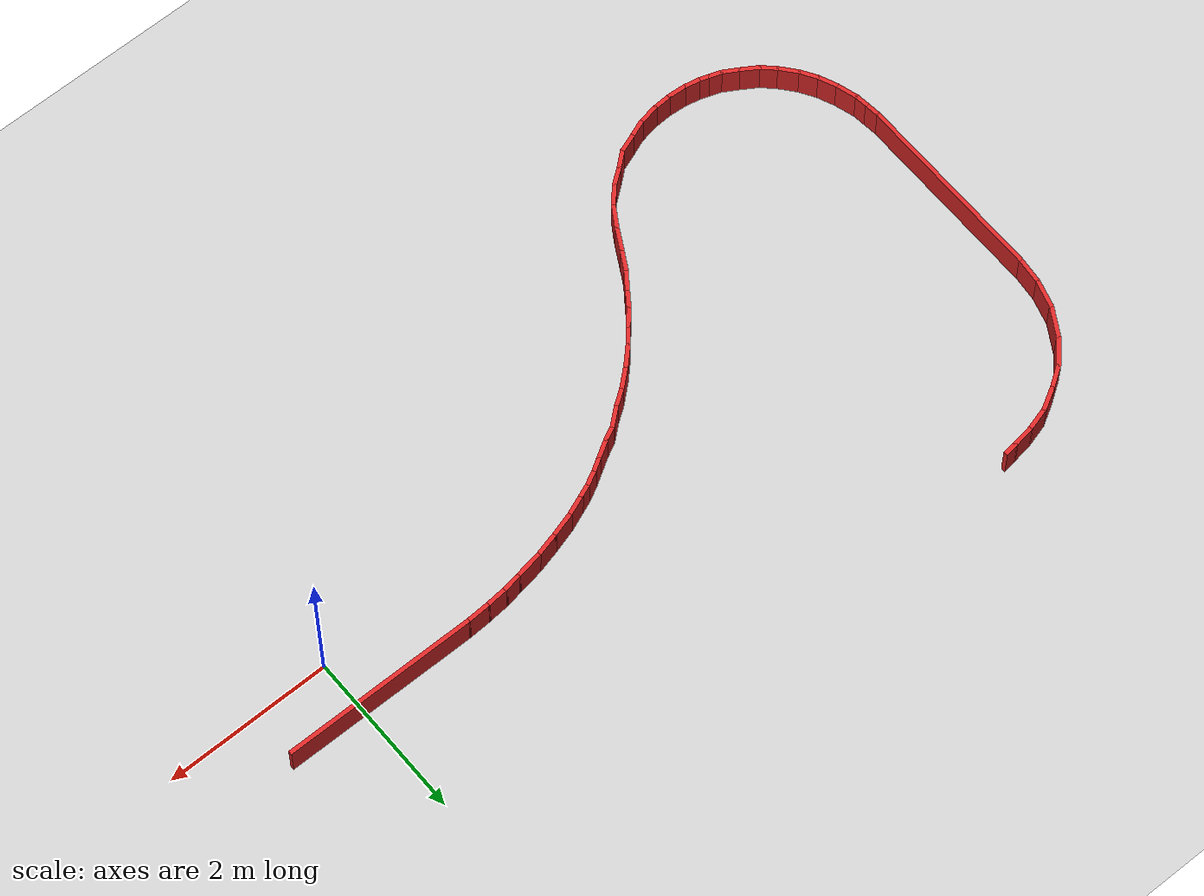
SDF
<sdf version="1.8">
 <world name="warehouse">
  <model name="ground_plane">
   <static>1</static>
   <link name="link">
    <collision name="collision">
     <geometry><plane><normal>0 0 1</normal><size>100 100</size></plane></geometry>
    </collision>
    <visual name="visual">
     <geometry><plane><normal>0 0 1</normal><size>100 100</size></plane></geometry>
     <material>
      <ambient>0.8 0.8 0.8 1</ambient>
      <diffuse>0.8 0.8 0.8 1</diffuse>
      <specular>0.8 0.8 0.8 1</specular>
     </material>
     <plugin name="__default__" filename="__default__"/>
    </visual>
   </link>
   <plugin name="__default__" filename="__default__"/>
  </model>
  <model name="outer_wall">
   <static>true</static>
   <link name="ow_91">
    <pose>-0.217081 0.683669 0.2000 0 0 3.138416</pose>
    <collision name="ow_91_collision"><geometry><box><size>2.341153 0.05 0.4</size></box></geometry></collision>
    <visual name="ow_91_visual">
     <geometry><box><size>2.341153 0.05 0.4</size></box></geometry>
     <material>
      <ambient>0.85 0.15 0.15 1</ambient>
      <diffuse>0.85 0.15 0.15 1</diffuse>
      <specular>0.1 0.1 0.1 1</specular>
     </material>
    </visual>
   </link>
   <link name="ow_92">
    <pose>-1.513798 0.680614 0.2000 0 0 -3.092119</pose>
    <collision name="ow_92_collision"><geometry><box><size>0.292626 0.05 0.4</size></box></geometry></collision>
    <visual name="ow_92_visual">
     <geometry><box><size>0.292626 0.05 0.4</size></box></geometry>
     <material>
      <ambient>0.85 0.15 0.15 1</ambient>
      <diffuse>0.85 0.15 0.15 1</diffuse>
      <specular>0.1 0.1 0.1 1</specular>
     </material>
    </visual>
   </link>
   <link name="ow_93">
    <pose>-1.775802 0.663267 0.2000 0 0 -3.057515</pose>
    <collision name="ow_93_collision"><geometry><box><size>0.272607 0.05 0.4</size></box></geometry></collision>
    <visual name="ow_93_visual">
     <geometry><box><size>0.272607 0.05 0.4</size></box></geometry>
     <material>
      <ambient>0.85 0.15 0.15 1</ambient>
      <diffuse>0.85 0.15 0.15 1</diffuse>
      <specular>0.1 0.1 0.1 1</specular>
     </material>
    </visual>
   </link>
   <link name="ow_94">
    <pose>-2.001793 0.635921 0.2000 0 0 -2.975964</pose>
    <collision name="ow_94_collision"><geometry><box><size>0.223047 0.05 0.4</size></box></geometry></collision>
    <visual name="ow_94_visual">
     <geometry><box><size>0.223047 0.05 0.4</size></box></geometry>
     <material>
      <ambient>0.85 0.15 0.15 1</ambient>
      <diffuse>0.85 0.15 0.15 1</diffuse>
      <specular>0.1 0.1 0.1 1</specular>
     </material>
    </visual>
   </link>
   <link name="ow_95">
    <pose>-2.261739 0.592113 0.2000 0 0 -2.973799</pose>
    <collision name="ow_95_collision"><geometry><box><size>0.344176 0.05 0.4</size></box></geometry></collision>
    <visual name="ow_95_visual">
     <geometry><box><size>0.344176 0.05 0.4</size></box></geometry>
     <material>
      <ambient>0.85 0.15 0.15 1</ambient>
      <diffuse>0.85 0.15 0.15 1</diffuse>
      <specular>0.1 0.1 0.1 1</specular>
     </material>
    </visual>
   </link>
   <link name="ow_96">
    <pose>-2.552122 0.531693 0.2000 0 0 -2.891520</pose>
    <collision name="ow_96_collision"><geometry><box><size>0.289527 0.05 0.4</size></box></geometry></collision>
    <visual name="ow_96_visual">
     <geometry><box><size>0.289527 0.05 0.4</size></box></geometry>
     <material>
      <ambient>0.85 0.15 0.15 1</ambient>
      <diffuse>0.85 0.15 0.15 1</diffuse>
      <specular>0.1 0.1 0.1 1</specular>
     </material>
    </visual>
   </link>
   <link name="ow_97">
    <pose>-2.821628 0.457721 0.2000 0 0 -2.857143</pose>
    <collision name="ow_97_collision"><geometry><box><size>0.309503 0.05 0.4</size></box></geometry></collision>
    <visual name="ow_97_visual">
     <geometry><box><size>0.309503 0.05 0.4</size></box></geometry>
     <material>
      <ambient>0.85 0.15 0.15 1</ambient>
      <diffuse>0.85 0.15 0.15 1</diffuse>
      <specular>0.1 0.1 0.1 1</specular>
     </material>
    </visual>
   </link>
   <link name="ow_98">
    <pose>-3.074871 0.371653 0.2000 0 0 -2.763181</pose>
    <collision name="ow_98_collision"><geometry><box><size>0.266021 0.05 0.4</size></box></geometry></collision>
    <visual name="ow_98_visual">
     <geometry><box><size>0.266021 0.05 0.4</size></box></geometry>
     <material>
      <ambient>0.85 0.15 0.15 1</ambient>
      <diffuse>0.85 0.15 0.15 1</diffuse>
      <specular>0.1 0.1 0.1 1</specular>
     </material>
    </visual>
   </link>
   <link name="ow_99">
    <pose>-3.261335 0.296280 0.2000 0 0 -2.748428</pose>
    <collision name="ow_99_collision"><geometry><box><size>0.176232 0.05 0.4</size></box></geometry></collision>
    <visual name="ow_99_visual">
     <geometry><box><size>0.176232 0.05 0.4</size></box></geometry>
     <material>
      <ambient>0.85 0.15 0.15 1</ambient>
      <diffuse>0.85 0.15 0.15 1</diffuse>
      <specular>0.1 0.1 0.1 1</specular>
     </material>
    </visual>
   </link>
   <link name="ow_100">
    <pose>-3.409862 0.225555 0.2000 0 0 -2.650954</pose>
    <collision name="ow_100_collision"><geometry><box><size>0.193172 0.05 0.4</size></box></geometry></collision>
    <visual name="ow_100_visual">
     <geometry><box><size>0.193172 0.05 0.4</size></box></geometry>
     <material>
      <ambient>0.85 0.15 0.15 1</ambient>
      <diffuse>0.85 0.15 0.15 1</diffuse>
      <specular>0.1 0.1 0.1 1</specular>
     </material>
    </visual>
   </link>
   <link name="ow_101">
    <pose>-3.551563 0.144229 0.2000 0 0 -2.586340</pose>
    <collision name="ow_101_collision"><geometry><box><size>0.173759 0.05 0.4</size></box></geometry></collision>
    <visual name="ow_101_visual">
     <geometry><box><size>0.173759 0.05 0.4</size></box></geometry>
     <material>
      <ambient>0.85 0.15 0.15 1</ambient>
      <diffuse>0.85 0.15 0.15 1</diffuse>
      <specular>0.1 0.1 0.1 1</specular>
     </material>
    </visual>
   </link>
   <link name="ow_102">
    <pose>-3.712788 0.045712 0.2000 0 0 -2.597712</pose>
    <collision name="ow_102_collision"><geometry><box><size>0.244132 0.05 0.4</size></box></geometry></collision>
    <visual name="ow_102_visual">
     <geometry><box><size>0.244132 0.05 0.4</size></box></geometry>
     <material>
      <ambient>0.85 0.15 0.15 1</ambient>
      <diffuse>0.85 0.15 0.15 1</diffuse>
      <specular>0.1 0.1 0.1 1</specular>
     </material>
    </visual>
   </link>
   <link name="ow_103">
    <pose>-3.884960 -0.051874 0.2000 0 0 -2.662769</pose>
    <collision name="ow_103_collision"><geometry><box><size>0.191883 0.05 0.4</size></box></geometry></collision>
    <visual name="ow_103_visual">
     <geometry><box><size>0.191883 0.05 0.4</size></box></geometry>
     <material>
      <ambient>0.85 0.15 0.15 1</ambient>
      <diffuse>0.85 0.15 0.15 1</diffuse>
      <specular>0.1 0.1 0.1 1</specular>
     </material>
    </visual>
   </link>
   <link name="ow_104">
    <pose>-4.053073 -0.169179 0.2000 0 0 -2.439331</pose>
    <collision name="ow_104_collision"><geometry><box><size>0.260604 0.05 0.4</size></box></geometry></collision>
    <visual name="ow_104_visual">
     <geometry><box><size>0.260604 0.05 0.4</size></box></geometry>
     <material>
      <ambient>0.85 0.15 0.15 1</ambient>
      <diffuse>0.85 0.15 0.15 1</diffuse>
      <specular>0.1 0.1 0.1 1</specular>
     </material>
    </visual>
   </link>
   <link name="ow_105">
    <pose>-4.231076 -0.307197 0.2000 0 0 -2.530928</pose>
    <collision name="ow_105_collision"><geometry><box><size>0.230352 0.05 0.4</size></box></geometry></collision>
    <visual name="ow_105_visual">
     <geometry><box><size>0.230352 0.05 0.4</size></box></geometry>
     <material>
      <ambient>0.85 0.15 0.15 1</ambient>
      <diffuse>0.85 0.15 0.15 1</diffuse>
      <specular>0.1 0.1 0.1 1</specular>
     </material>
    </visual>
   </link>
   <link name="ow_106">
    <pose>-4.421945 -0.458782 0.2000 0 0 -2.424591</pose>
    <collision name="ow_106_collision"><geometry><box><size>0.297805 0.05 0.4</size></box></geometry></collision>
    <visual name="ow_106_visual">
     <geometry><box><size>0.297805 0.05 0.4</size></box></geometry>
     <material>
      <ambient>0.85 0.15 0.15 1</ambient>
      <diffuse>0.85 0.15 0.15 1</diffuse>
      <specular>0.1 0.1 0.1 1</specular>
     </material>
    </visual>
   </link>
   <link name="ow_107">
    <pose>-4.619718 -0.642966 0.2000 0 0 -2.357076</pose>
    <collision name="ow_107_collision"><geometry><box><size>0.283012 0.05 0.4</size></box></geometry></collision>
    <visual name="ow_107_visual">
     <geometry><box><size>0.283012 0.05 0.4</size></box></geometry>
     <material>
      <ambient>0.85 0.15 0.15 1</ambient>
      <diffuse>0.85 0.15 0.15 1</diffuse>
      <specular>0.1 0.1 0.1 1</specular>
     </material>
    </visual>
   </link>
   <link name="ow_108">
    <pose>-4.781413 -0.817411 0.2000 0 0 -2.270406</pose>
    <collision name="ow_108_collision"><geometry><box><size>0.233144 0.05 0.4</size></box></geometry></collision>
    <visual name="ow_108_visual">
     <geometry><box><size>0.233144 0.05 0.4</size></box></geometry>
     <material>
      <ambient>0.85 0.15 0.15 1</ambient>
      <diffuse>0.85 0.15 0.15 1</diffuse>
      <specular>0.1 0.1 0.1 1</specular>
     </material>
    </visual>
   </link>
   <link name="ow_109">
    <pose>-4.924470 -0.982406 0.2000 0 0 -2.299102</pose>
    <collision name="ow_109_collision"><geometry><box><size>0.243656 0.05 0.4</size></box></geometry></collision>
    <visual name="ow_109_visual">
     <geometry><box><size>0.243656 0.05 0.4</size></box></geometry>
     <material>
      <ambient>0.85 0.15 0.15 1</ambient>
      <diffuse>0.85 0.15 0.15 1</diffuse>
      <specular>0.1 0.1 0.1 1</specular>
     </material>
    </visual>
   </link>
   <link name="ow_110">
    <pose>-5.062353 -1.156340 0.2000 0 0 -2.182388</pose>
    <collision name="ow_110_collision"><geometry><box><size>0.241015 0.05 0.4</size></box></geometry></collision>
    <visual name="ow_110_visual">
     <geometry><box><size>0.241015 0.05 0.4</size></box></geometry>
     <material>
      <ambient>0.85 0.15 0.15 1</ambient>
      <diffuse>0.85 0.15 0.15 1</diffuse>
      <specular>0.1 0.1 0.1 1</specular>
     </material>
    </visual>
   </link>
   <link name="ow_111">
    <pose>-5.198272 -1.345685 0.2000 0 0 -2.203312</pose>
    <collision name="ow_111_collision"><geometry><box><size>0.265167 0.05 0.4</size></box></geometry></collision>
    <visual name="ow_111_visual">
     <geometry><box><size>0.265167 0.05 0.4</size></box></geometry>
     <material>
      <ambient>0.85 0.15 0.15 1</ambient>
      <diffuse>0.85 0.15 0.15 1</diffuse>
      <specular>0.1 0.1 0.1 1</specular>
     </material>
    </visual>
   </link>
   <link name="ow_112">
    <pose>-5.330042 -1.550418 0.2000 0 0 -2.081415</pose>
    <collision name="ow_112_collision"><geometry><box><size>0.262686 0.05 0.4</size></box></geometry></collision>
    <visual name="ow_112_visual">
     <geometry><box><size>0.262686 0.05 0.4</size></box></geometry>
     <material>
      <ambient>0.85 0.15 0.15 1</ambient>
      <diffuse>0.85 0.15 0.15 1</diffuse>
      <specular>0.1 0.1 0.1 1</specular>
     </material>
    </visual>
   </link>
   <link name="ow_113">
    <pose>-5.457485 -1.781213 0.2000 0 0 -2.070118</pose>
    <collision name="ow_113_collision"><geometry><box><size>0.304610 0.05 0.4</size></box></geometry></collision>
    <visual name="ow_113_visual">
     <geometry><box><size>0.304610 0.05 0.4</size></box></geometry>
     <material>
      <ambient>0.85 0.15 0.15 1</ambient>
      <diffuse>0.85 0.15 0.15 1</diffuse>
      <specular>0.1 0.1 0.1 1</specular>
     </material>
    </visual>
   </link>
   <link name="ow_114">
    <pose>-5.602047 -2.028682 0.2000 0 0 -2.128432</pose>
    <collision name="ow_114_collision"><geometry><box><size>0.308831 0.05 0.4</size></box></geometry></collision>
    <visual name="ow_114_visual">
     <geometry><box><size>0.308831 0.05 0.4</size></box></geometry>
     <material>
      <ambient>0.85 0.15 0.15 1</ambient>
      <diffuse>0.85 0.15 0.15 1</diffuse>
      <specular>0.1 0.1 0.1 1</specular>
     </material>
    </visual>
   </link>
   <link name="ow_115">
    <pose>-5.758771 -2.237800 0.2000 0 0 -2.318594</pose>
    <collision name="ow_115_collision"><geometry><box><size>0.256175 0.05 0.4</size></box></geometry></collision>
    <visual name="ow_115_visual">
     <geometry><box><size>0.256175 0.05 0.4</size></box></geometry>
     <material>
      <ambient>0.85 0.15 0.15 1</ambient>
      <diffuse>0.85 0.15 0.15 1</diffuse>
      <specular>0.1 0.1 0.1 1</specular>
     </material>
    </visual>
   </link>
   <link name="ow_116">
    <pose>-5.928142 -2.393348 0.2000 0 0 -2.482703</pose>
    <collision name="ow_116_collision"><geometry><box><size>0.245298 0.05 0.4</size></box></geometry></collision>
    <visual name="ow_116_visual">
     <geometry><box><size>0.245298 0.05 0.4</size></box></geometry>
     <material>
      <ambient>0.85 0.15 0.15 1</ambient>
      <diffuse>0.85 0.15 0.15 1</diffuse>
      <specular>0.1 0.1 0.1 1</specular>
     </material>
    </visual>
   </link>
   <link name="ow_117">
    <pose>-6.097570 -2.530268 0.2000 0 0 -2.439664</pose>
    <collision name="ow_117_collision"><geometry><box><size>0.230476 0.05 0.4</size></box></geometry></collision>
    <visual name="ow_117_visual">
     <geometry><box><size>0.230476 0.05 0.4</size></box></geometry>
     <material>
      <ambient>0.85 0.15 0.15 1</ambient>
      <diffuse>0.85 0.15 0.15 1</diffuse>
      <specular>0.1 0.1 0.1 1</specular>
     </material>
    </visual>
   </link>
   <link name="ow_118">
    <pose>-6.279866 -2.636087 0.2000 0 0 -2.785900</pose>
    <collision name="ow_118_collision"><geometry><box><size>0.237486 0.05 0.4</size></box></geometry></collision>
    <visual name="ow_118_visual">
     <geometry><box><size>0.237486 0.05 0.4</size></box></geometry>
     <material>
      <ambient>0.85 0.15 0.15 1</ambient>
      <diffuse>0.85 0.15 0.15 1</diffuse>
      <specular>0.1 0.1 0.1 1</specular>
     </material>
    </visual>
   </link>
   <link name="ow_119">
    <pose>-6.474709 -2.710402 0.2000 0 0 -2.767760</pose>
    <collision name="ow_119_collision"><geometry><box><size>0.219599 0.05 0.4</size></box></geometry></collision>
    <visual name="ow_119_visual">
     <geometry><box><size>0.219599 0.05 0.4</size></box></geometry>
     <material>
      <ambient>0.85 0.15 0.15 1</ambient>
      <diffuse>0.85 0.15 0.15 1</diffuse>
      <specular>0.1 0.1 0.1 1</specular>
     </material>
    </visual>
   </link>
   <link name="ow_120">
    <pose>-6.685999 -2.768015 0.2000 0 0 -2.964656</pose>
    <collision name="ow_120_collision"><geometry><box><size>0.260521 0.05 0.4</size></box></geometry></collision>
    <visual name="ow_120_visual">
     <geometry><box><size>0.260521 0.05 0.4</size></box></geometry>
     <material>
      <ambient>0.85 0.15 0.15 1</ambient>
      <diffuse>0.85 0.15 0.15 1</diffuse>
      <specular>0.1 0.1 0.1 1</specular>
     </material>
    </visual>
   </link>
   <link name="ow_121">
    <pose>-6.903637 -2.794340 0.2000 0 0 -3.089675</pose>
    <collision name="ow_121_collision"><geometry><box><size>0.218776 0.05 0.4</size></box></geometry></collision>
    <visual name="ow_121_visual">
     <geometry><box><size>0.218776 0.05 0.4</size></box></geometry>
     <material>
      <ambient>0.85 0.15 0.15 1</ambient>
      <diffuse>0.85 0.15 0.15 1</diffuse>
      <specular>0.1 0.1 0.1 1</specular>
     </material>
    </visual>
   </link>
   <link name="ow_122">
    <pose>-7.109204 -2.792639 0.2000 0 0 3.077166</pose>
    <collision name="ow_122_collision"><geometry><box><size>0.233068 0.05 0.4</size></box></geometry></collision>
    <visual name="ow_122_visual">
     <geometry><box><size>0.233068 0.05 0.4</size></box></geometry>
     <material>
      <ambient>0.85 0.15 0.15 1</ambient>
      <diffuse>0.85 0.15 0.15 1</diffuse>
      <specular>0.1 0.1 0.1 1</specular>
     </material>
    </visual>
   </link>
   <link name="ow_123">
    <pose>-7.303393 -2.767807 0.2000 0 0 2.939850</pose>
    <collision name="ow_123_collision"><geometry><box><size>0.199389 0.05 0.4</size></box></geometry></collision>
    <visual name="ow_123_visual">
     <geometry><box><size>0.199389 0.05 0.4</size></box></geometry>
     <material>
      <ambient>0.85 0.15 0.15 1</ambient>
      <diffuse>0.85 0.15 0.15 1</diffuse>
      <specular>0.1 0.1 0.1 1</specular>
     </material>
    </visual>
   </link>
   <link name="ow_124">
    <pose>-7.444453 -2.733140 0.2000 0 0 2.837442</pose>
    <collision name="ow_124_collision"><geometry><box><size>0.131486 0.05 0.4</size></box></geometry></collision>
    <visual name="ow_124_visual">
     <geometry><box><size>0.131486 0.05 0.4</size></box></geometry>
     <material>
      <ambient>0.85 0.15 0.15 1</ambient>
      <diffuse>0.85 0.15 0.15 1</diffuse>
      <specular>0.1 0.1 0.1 1</specular>
     </material>
    </visual>
   </link>
   <link name="ow_125">
    <pose>-7.569736 -2.691706 0.2000 0 0 2.811038</pose>
    <collision name="ow_125_collision"><geometry><box><size>0.172450 0.05 0.4</size></box></geometry></collision>
    <visual name="ow_125_visual">
     <geometry><box><size>0.172450 0.05 0.4</size></box></geometry>
     <material>
      <ambient>0.85 0.15 0.15 1</ambient>
      <diffuse>0.85 0.15 0.15 1</diffuse>
      <specular>0.1 0.1 0.1 1</specular>
     </material>
    </visual>
   </link>
   <link name="ow_126">
    <pose>-7.728932 -2.616599 0.2000 0 0 2.617301</pose>
    <collision name="ow_126_collision"><geometry><box><size>0.221224 0.05 0.4</size></box></geometry></collision>
    <visual name="ow_126_visual">
     <geometry><box><size>0.221224 0.05 0.4</size></box></geometry>
     <material>
      <ambient>0.85 0.15 0.15 1</ambient>
      <diffuse>0.85 0.15 0.15 1</diffuse>
      <specular>0.1 0.1 0.1 1</specular>
     </material>
    </visual>
   </link>
   <link name="ow_127">
    <pose>-7.910194 -2.506368 0.2000 0 0 2.575302</pose>
    <collision name="ow_127_collision"><geometry><box><size>0.243168 0.05 0.4</size></box></geometry></collision>
    <visual name="ow_127_visual">
     <geometry><box><size>0.243168 0.05 0.4</size></box></geometry>
     <material>
      <ambient>0.85 0.15 0.15 1</ambient>
      <diffuse>0.85 0.15 0.15 1</diffuse>
      <specular>0.1 0.1 0.1 1</specular>
     </material>
    </visual>
   </link>
   <link name="ow_128">
    <pose>-8.076504 -2.378846 0.2000 0 0 2.388282</pose>
    <collision name="ow_128_collision"><geometry><box><size>0.217809 0.05 0.4</size></box></geometry></collision>
    <visual name="ow_128_visual">
     <geometry><box><size>0.217809 0.05 0.4</size></box></geometry>
     <material>
      <ambient>0.85 0.15 0.15 1</ambient>
      <diffuse>0.85 0.15 0.15 1</diffuse>
      <specular>0.1 0.1 0.1 1</specular>
     </material>
    </visual>
   </link>
   <link name="ow_129">
    <pose>-8.225832 -2.219172 0.2000 0 0 2.268758</pose>
    <collision name="ow_129_collision"><geometry><box><size>0.260206 0.05 0.4</size></box></geometry></collision>
    <visual name="ow_129_visual">
     <geometry><box><size>0.260206 0.05 0.4</size></box></geometry>
     <material>
      <ambient>0.85 0.15 0.15 1</ambient>
      <diffuse>0.85 0.15 0.15 1</diffuse>
      <specular>0.1 0.1 0.1 1</specular>
     </material>
    </visual>
   </link>
   <link name="ow_130">
    <pose>-8.360320 -2.033697 0.2000 0 0 2.120819</pose>
    <collision name="ow_130_collision"><geometry><box><size>0.239252 0.05 0.4</size></box></geometry></collision>
    <visual name="ow_130_visual">
     <geometry><box><size>0.239252 0.05 0.4</size></box></geometry>
     <material>
      <ambient>0.85 0.15 0.15 1</ambient>
      <diffuse>0.85 0.15 0.15 1</diffuse>
      <specular>0.1 0.1 0.1 1</specular>
     </material>
    </visual>
   </link>
   <link name="ow_131">
    <pose>-8.462478 -1.837388 0.2000 0 0 1.982053</pose>
    <collision name="ow_131_collision"><geometry><box><size>0.244416 0.05 0.4</size></box></geometry></collision>
    <visual name="ow_131_visual">
     <geometry><box><size>0.244416 0.05 0.4</size></box></geometry>
     <material>
      <ambient>0.85 0.15 0.15 1</ambient>
      <diffuse>0.85 0.15 0.15 1</diffuse>
      <specular>0.1 0.1 0.1 1</specular>
     </material>
    </visual>
   </link>
   <link name="ow_132">
    <pose>-8.544199 -1.612760 0.2000 0 0 1.864750</pose>
    <collision name="ow_132_collision"><geometry><box><size>0.274468 0.05 0.4</size></box></geometry></collision>
    <visual name="ow_132_visual">
     <geometry><box><size>0.274468 0.05 0.4</size></box></geometry>
     <material>
      <ambient>0.85 0.15 0.15 1</ambient>
      <diffuse>0.85 0.15 0.15 1</diffuse>
      <specular>0.1 0.1 0.1 1</specular>
     </material>
    </visual>
   </link>
   <link name="ow_133">
    <pose>-8.590064 -1.415822 0.2000 0 0 1.689968</pose>
    <collision name="ow_133_collision"><geometry><box><size>0.171397 0.05 0.4</size></box></geometry></collision>
    <visual name="ow_133_visual">
     <geometry><box><size>0.171397 0.05 0.4</size></box></geometry>
     <material>
      <ambient>0.85 0.15 0.15 1</ambient>
      <diffuse>0.85 0.15 0.15 1</diffuse>
      <specular>0.1 0.1 0.1 1</specular>
     </material>
    </visual>
   </link>
   <link name="ow_134">
    <pose>-8.608014 -1.255306 0.2000 0 0 1.675278</pose>
    <collision name="ow_134_collision"><geometry><box><size>0.191645 0.05 0.4</size></box></geometry></collision>
    <visual name="ow_134_visual">
     <geometry><box><size>0.191645 0.05 0.4</size></box></geometry>
     <material>
      <ambient>0.85 0.15 0.15 1</ambient>
      <diffuse>0.85 0.15 0.15 1</diffuse>
      <specular>0.1 0.1 0.1 1</specular>
     </material>
    </visual>
   </link>
   <link name="ow_135">
    <pose>-8.615903 -0.003268 0.2000 0 0 1.569886</pose>
    <collision name="ow_135_collision"><geometry><box><size>2.353368 0.05 0.4</size></box></geometry></collision>
    <visual name="ow_135_visual">
     <geometry><box><size>2.353368 0.05 0.4</size></box></geometry>
     <material>
      <ambient>0.85 0.15 0.15 1</ambient>
      <diffuse>0.85 0.15 0.15 1</diffuse>
      <specular>0.1 0.1 0.1 1</specular>
     </material>
    </visual>
   </link>
   <link name="ow_136">
    <pose>-8.598887 1.319486 0.2000 0 0 1.468930</pose>
    <collision name="ow_136_collision"><geometry><box><size>0.333767 0.05 0.4</size></box></geometry></collision>
    <visual name="ow_136_visual">
     <geometry><box><size>0.333767 0.05 0.4</size></box></geometry>
     <material>
      <ambient>0.85 0.15 0.15 1</ambient>
      <diffuse>0.85 0.15 0.15 1</diffuse>
      <specular>0.1 0.1 0.1 1</specular>
     </material>
    </visual>
   </link>
   <link name="ow_137">
    <pose>-8.538097 1.634921 0.2000 0 0 1.296537</pose>
    <collision name="ow_137_collision"><geometry><box><size>0.351104 0.05 0.4</size></box></geometry></collision>
    <visual name="ow_137_visual">
     <geometry><box><size>0.351104 0.05 0.4</size></box></geometry>
     <material>
      <ambient>0.85 0.15 0.15 1</ambient>
      <diffuse>0.85 0.15 0.15 1</diffuse>
      <specular>0.1 0.1 0.1 1</specular>
     </material>
    </visual>
   </link>
   <link name="ow_138">
    <pose>-8.398316 1.958667 0.2000 0 0 1.047025</pose>
    <collision name="ow_138_collision"><geometry><box><size>0.399662 0.05 0.4</size></box></geometry></collision>
    <visual name="ow_138_visual">
     <geometry><box><size>0.399662 0.05 0.4</size></box></geometry>
     <material>
      <ambient>0.85 0.15 0.15 1</ambient>
      <diffuse>0.85 0.15 0.15 1</diffuse>
      <specular>0.1 0.1 0.1 1</specular>
     </material>
    </visual>
   </link>
   <link name="ow_139">
    <pose>-8.189175 2.249244 0.2000 0 0 0.835267</pose>
    <collision name="ow_139_collision"><geometry><box><size>0.360388 0.05 0.4</size></box></geometry></collision>
    <visual name="ow_139_visual">
     <geometry><box><size>0.360388 0.05 0.4</size></box></geometry>
     <material>
      <ambient>0.85 0.15 0.15 1</ambient>
      <diffuse>0.85 0.15 0.15 1</diffuse>
      <specular>0.1 0.1 0.1 1</specular>
     </material>
    </visual>
   </link>
   <link name="ow_140">
    <pose>-7.962501 2.451695 0.2000 0 0 0.595790</pose>
    <collision name="ow_140_collision"><geometry><box><size>0.291781 0.05 0.4</size></box></geometry></collision>
    <visual name="ow_140_visual">
     <geometry><box><size>0.291781 0.05 0.4</size></box></geometry>
     <material>
      <ambient>0.85 0.15 0.15 1</ambient>
      <diffuse>0.85 0.15 0.15 1</diffuse>
      <specular>0.1 0.1 0.1 1</specular>
     </material>
    </visual>
   </link>
   <link name="ow_141">
    <pose>-7.729943 2.596915 0.2000 0 0 0.521314</pose>
    <collision name="ow_141_collision"><geometry><box><size>0.296950 0.05 0.4</size></box></geometry></collision>
    <visual name="ow_141_visual">
     <geometry><box><size>0.296950 0.05 0.4</size></box></geometry>
     <material>
      <ambient>0.85 0.15 0.15 1</ambient>
      <diffuse>0.85 0.15 0.15 1</diffuse>
      <specular>0.1 0.1 0.1 1</specular>
     </material>
    </visual>
   </link>
   <link name="ow_142">
    <pose>-7.477002 2.703742 0.2000 0 0 0.277628</pose>
    <collision name="ow_142_collision"><geometry><box><size>0.296300 0.05 0.4</size></box></geometry></collision>
    <visual name="ow_142_visual">
     <geometry><box><size>0.296300 0.05 0.4</size></box></geometry>
     <material>
      <ambient>0.85 0.15 0.15 1</ambient>
      <diffuse>0.85 0.15 0.15 1</diffuse>
      <specular>0.1 0.1 0.1 1</specular>
     </material>
    </visual>
   </link>
   <link name="ow_143">
    <pose>-7.223749 2.759476 0.2000 0 0 0.147358</pose>
    <collision name="ow_143_collision"><geometry><box><size>0.263426 0.05 0.4</size></box></geometry></collision>
    <visual name="ow_143_visual">
     <geometry><box><size>0.263426 0.05 0.4</size></box></geometry>
     <material>
      <ambient>0.85 0.15 0.15 1</ambient>
      <diffuse>0.85 0.15 0.15 1</diffuse>
      <specular>0.1 0.1 0.1 1</specular>
     </material>
    </visual>
   </link>
   <link name="ow_144">
    <pose>-7.030036 2.786717 0.2000 0 0 0.127109</pose>
    <collision name="ow_144_collision"><geometry><box><size>0.167830 0.05 0.4</size></box></geometry></collision>
    <visual name="ow_144_visual">
     <geometry><box><size>0.167830 0.05 0.4</size></box></geometry>
     <material>
      <ambient>0.85 0.15 0.15 1</ambient>
      <diffuse>0.85 0.15 0.15 1</diffuse>
      <specular>0.1 0.1 0.1 1</specular>
     </material>
    </visual>
   </link>
  </model>
 </world>
</sdf>
